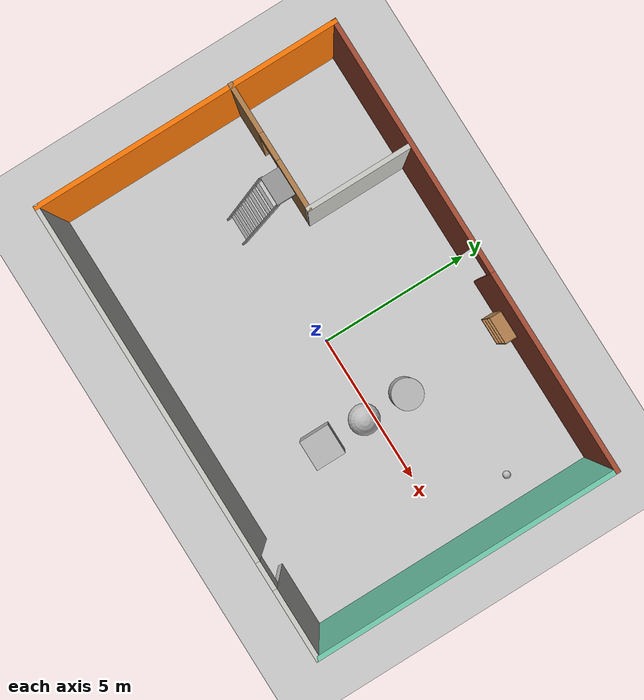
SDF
<sdf version="1.6">
 <world name="default">
  <light name="sun" type="directional">
   <pose>0 0 10 0 -0 0</pose>
   <diffuse>0.8 0.8 0.8 1</diffuse>
   <specular>0.2 0.2 0.2 1</specular>
   <attenuation>
    <range>1000</range>
    <constant>0.9</constant>
    <linear>0.01</linear>
    <quadratic>0.001</quadratic>
   </attenuation>
   <direction>-0.5 0.1 -0.9</direction>
  </light>
  <model name="ground_plane">
   <static>1</static>
   <link name="link">
    <collision name="collision">
     <geometry><plane><normal>0 0 1</normal><size>100 100</size></plane></geometry>
     <surface>
      <contact><collide_bitmask>65535</collide_bitmask></contact>
      <friction><ode><mu>100</mu><mu2>50</mu2></ode></friction>
     </surface>
    </collision>
    <visual name="visual">
     <cast_shadows>0</cast_shadows>
     <geometry><plane><normal>0 0 1</normal><size>100 100</size></plane></geometry>
     <material>
      <script><uri>file://media/materials/scripts/gazebo.material</uri><name>Gazebo/Grey</name></script>
     </material>
    </visual>
   </link>
  </model>
  <gravity>0 0 -9.8</gravity>
  <magnetic_field>6e-06 2.3e-05 -4.2e-05</magnetic_field>
  <atmosphere type="adiabatic"/>
  <physics name="default_physics" default="0" type="ode">
   <max_step_size>0.001</max_step_size>
   <real_time_factor>1</real_time_factor>
   <real_time_update_rate>1000</real_time_update_rate>
  </physics>
  <scene><ambient>0.4 0.4 0.4 1</ambient><background>0.7 0.7 0.7 1</background><shadows>1</shadows></scene>
  <audio><device>default</device></audio>
  <spherical_coordinates>
   <surface_model>EARTH_WGS84</surface_model>
   <latitude_deg>0</latitude_deg>
   <longitude_deg>0</longitude_deg>
   <elevation>0</elevation>
   <heading_deg>0</heading_deg>
  </spherical_coordinates>
  <model name="betterworld">
   <pose>-0.053249 0.021834 0 0 -0 0</pose>
   <link name="Wall_36">
    <pose>0.011179 -4.925 0 0 -0 0</pose>
    <visual name="Wall_36_Visual_0">
     <pose>-1.61732 0 1.25 0 -0 0</pose>
     <geometry><box><size>11.7654 0.15 2.5</size></box></geometry>
     <material>
      <script><uri>file://media/materials/scripts/gazebo.material</uri><name>Gazebo/CeilingTiled</name></script>
      <ambient>1 1 1 1</ambient>
     </material>
     <meta><layer>0</layer></meta>
    </visual>
    <collision name="Wall_36_Collision_0">
     <geometry><box><size>11.7654 0.15 2.5</size></box></geometry>
     <pose>-1.61732 0 1.25 0 -0 0</pose>
    </collision>
    <visual name="Wall_36_Visual_1">
     <pose>6.33268 0 1.25 0 -0 0</pose>
     <geometry><box><size>2.33464 0.15 2.5</size></box></geometry>
     <material>
      <script><uri>file://media/materials/scripts/gazebo.material</uri><name>Gazebo/CeilingTiled</name></script>
      <ambient>1 1 1 1</ambient>
     </material>
     <meta><layer>0</layer></meta>
    </visual>
    <collision name="Wall_36_Collision_1">
     <geometry><box><size>2.33464 0.15 2.5</size></box></geometry>
     <pose>6.33268 0 1.25 0 -0 0</pose>
    </collision>
    <visual name="Wall_36_Visual_2">
     <pose>4.71536 0 2.25 0 -0 0</pose>
     <geometry><box><size>0.9 0.15 0.5</size></box></geometry>
     <material>
      <script><uri>file://media/materials/scripts/gazebo.material</uri><name>Gazebo/CeilingTiled</name></script>
      <ambient>1 1 1 1</ambient>
     </material>
     <meta><layer>0</layer></meta>
    </visual>
    <collision name="Wall_36_Collision_2">
     <geometry><box><size>0.9 0.15 0.5</size></box></geometry>
     <pose>4.71536 0 2.25 0 -0 0</pose>
    </collision>
   </link>
   <link name="Wall_37">
    <collision name="Wall_37_Collision">
     <geometry><box><size>10 0.15 2.5</size></box></geometry>
     <pose>0 0 1.25 0 -0 0</pose>
    </collision>
    <visual name="Wall_37_Visual">
     <pose>0 0 1.25 0 -0 0</pose>
     <geometry><box><size>10 0.15 2.5</size></box></geometry>
     <material>
      <script><uri>file://media/materials/scripts/gazebo.material</uri><name>Gazebo/Grey</name></script>
      <ambient>0.435294 0.796078 0.67451 1</ambient>
     </material>
     <meta><layer>0</layer></meta>
    </visual>
    <pose>7.43618 -0 0 0 -0 1.5708</pose>
   </link>
   <link name="Wall_38">
    <pose>0.011179 4.925 0 0 -0 3.14159</pose>
    <visual name="Wall_38_Visual_0">
     <pose>-4.1975 0 1.25 0 -0 0</pose>
     <geometry><box><size>6.60501 0.15 2.5</size></box></geometry>
     <material>
      <script><uri>file://media/materials/scripts/gazebo.material</uri><name>Gazebo/Bricks</name></script>
      <ambient>1 1 1 1</ambient>
     </material>
     <meta><layer>0</layer></meta>
    </visual>
    <collision name="Wall_38_Collision_0">
     <geometry><box><size>6.60501 0.15 2.5</size></box></geometry>
     <pose>-4.1975 0 1.25 0 -0 0</pose>
    </collision>
    <visual name="Wall_38_Visual_1">
     <pose>3.7525 0 1.25 0 -0 0</pose>
     <geometry><box><size>7.495 0.15 2.5</size></box></geometry>
     <material>
      <script><uri>file://media/materials/scripts/gazebo.material</uri><name>Gazebo/Bricks</name></script>
      <ambient>1 1 1 1</ambient>
     </material>
     <meta><layer>0</layer></meta>
    </visual>
    <collision name="Wall_38_Collision_1">
     <geometry><box><size>7.495 0.15 2.5</size></box></geometry>
     <pose>3.7525 0 1.25 0 -0 0</pose>
    </collision>
    <visual name="Wall_38_Visual_2">
     <pose>-0.444995 0 2.25 0 -0 0</pose>
     <geometry><box><size>0.9 0.15 0.5</size></box></geometry>
     <material>
      <script><uri>file://media/materials/scripts/gazebo.material</uri><name>Gazebo/Bricks</name></script>
      <ambient>1 1 1 1</ambient>
     </material>
     <meta><layer>0</layer></meta>
    </visual>
    <collision name="Wall_38_Collision_2">
     <geometry><box><size>0.9 0.15 0.5</size></box></geometry>
     <pose>-0.444995 0 2.25 0 -0 0</pose>
    </collision>
   </link>
   <link name="Wall_39">
    <collision name="Wall_39_Collision">
     <geometry><box><size>10 0.15 2.5</size></box></geometry>
     <pose>0 0 1.25 0 -0 0</pose>
    </collision>
    <visual name="Wall_39_Visual">
     <pose>0 0 1.25 0 -0 0</pose>
     <geometry><box><size>10 0.15 2.5</size></box></geometry>
     <material>
      <script><uri>file://media/materials/scripts/gazebo.material</uri><name>Gazebo/Grey</name></script>
      <ambient>0.996078 0.47451 0.0196078 1</ambient>
     </material>
     <meta><layer>0</layer></meta>
    </visual>
    <pose>-7.41382 -0 0 0 -0 -1.5708</pose>
   </link>
   <link name="Wall_45">
    <pose>-5.38618 1.51409 0 0 -0 0</pose>
    <visual name="Wall_45_Visual_0">
     <pose>-1.29521 0 1.25 0 -0 0</pose>
     <geometry><box><size>1.65957 0.15 2.5</size></box></geometry>
     <material>
      <script><uri>file://media/materials/scripts/gazebo.material</uri><name>Gazebo/Wood</name></script>
      <ambient>1 1 1 1</ambient>
     </material>
     <meta><layer>0</layer></meta>
    </visual>
    <collision name="Wall_45_Collision_0">
     <geometry><box><size>1.65957 0.15 2.5</size></box></geometry>
     <pose>-1.29521 0 1.25 0 -0 0</pose>
    </collision>
    <visual name="Wall_45_Visual_1">
     <pose>1.27979 0 1.25 0 -0 0</pose>
     <geometry><box><size>1.69043 0.15 2.5</size></box></geometry>
     <material>
      <script><uri>file://media/materials/scripts/gazebo.material</uri><name>Gazebo/Wood</name></script>
      <ambient>1 1 1 1</ambient>
     </material>
     <meta><layer>0</layer></meta>
    </visual>
    <collision name="Wall_45_Collision_1">
     <geometry><box><size>1.69043 0.15 2.5</size></box></geometry>
     <pose>1.27979 0 1.25 0 -0 0</pose>
    </collision>
    <visual name="Wall_45_Visual_2">
     <pose>-0.015428 0 2.25 0 -0 0</pose>
     <geometry><box><size>0.9 0.15 0.5</size></box></geometry>
     <material>
      <script><uri>file://media/materials/scripts/gazebo.material</uri><name>Gazebo/Wood</name></script>
      <ambient>1 1 1 1</ambient>
     </material>
     <meta><layer>0</layer></meta>
    </visual>
    <collision name="Wall_45_Collision_2">
     <geometry><box><size>0.9 0.15 0.5</size></box></geometry>
     <pose>-0.015428 0 2.25 0 -0 0</pose>
    </collision>
   </link>
   <link name="Wall_46">
    <collision name="Wall_46_Collision">
     <geometry><box><size>3.5 0.15 2.5</size></box></geometry>
     <pose>0 0 1.25 0 -0 0</pose>
    </collision>
    <visual name="Wall_46_Visual">
     <pose>0 0 1.25 0 -0 0</pose>
     <geometry><box><size>3.5 0.15 2.5</size></box></geometry>
     <material>
      <script><uri>file://media/materials/scripts/gazebo.material</uri><name>Gazebo/CeilingTiled</name></script>
      <ambient>1 1 1 1</ambient>
     </material>
     <meta><layer>0</layer></meta>
    </visual>
    <pose>-3.33618 3.18909 0 0 -0 1.5708</pose>
   </link>
   <static>1</static>
  </model>
  <model name="bookshelf">
   <static>1</static>
   <link name="link">
    <inertial><mass>1</mass></inertial>
    <collision name="back">
     <pose>0 0.005 0.6 0 -0 0</pose>
     <geometry><box><size>0.9 0.01 1.2</size></box></geometry>
    </collision>
    <visual name="visual1">
     <pose>0 0.005 0.6 0 -0 0</pose>
     <geometry><box><size>0.9 0.01 1.2</size></box></geometry>
     <material>
      <script><uri>file://media/materials/scripts/gazebo.material</uri><name>Gazebo/Wood</name></script>
     </material>
    </visual>
    <collision name="left_side">
     <pose>0.45 -0.195 0.6 0 -0 0</pose>
     <geometry><box><size>0.02 0.4 1.2</size></box></geometry>
    </collision>
    <visual name="visual2">
     <pose>0.45 -0.195 0.6 0 -0 0</pose>
     <geometry><box><size>0.02 0.4 1.2</size></box></geometry>
     <material>
      <script><uri>file://media/materials/scripts/gazebo.material</uri><name>Gazebo/Wood</name></script>
     </material>
    </visual>
    <collision name="right_side">
     <pose>-0.45 -0.195 0.6 0 -0 0</pose>
     <geometry><box><size>0.02 0.4 1.2</size></box></geometry>
    </collision>
    <visual name="visual3">
     <pose>-0.45 -0.195 0.6 0 -0 0</pose>
     <geometry><box><size>0.02 0.4 1.2</size></box></geometry>
     <material>
      <script><uri>file://media/materials/scripts/gazebo.material</uri><name>Gazebo/Wood</name></script>
     </material>
    </visual>
    <collision name="bottom">
     <pose>0 -0.195 0.03 0 -0 0</pose>
     <geometry><box><size>0.88 0.4 0.06</size></box></geometry>
    </collision>
    <visual name="visual4">
     <pose>0 -0.195 0.03 0 -0 0</pose>
     <geometry><box><size>0.88 0.4 0.06</size></box></geometry>
     <material>
      <script><uri>file://media/materials/scripts/gazebo.material</uri><name>Gazebo/Wood</name></script>
     </material>
    </visual>
    <collision name="top">
     <pose>0 -0.195 1.19 0 -0 0</pose>
     <geometry><box><size>0.88 0.4 0.02</size></box></geometry>
    </collision>
    <visual name="visual5">
     <pose>0 -0.195 1.19 0 -0 0</pose>
     <geometry><box><size>0.88 0.4 0.02</size></box></geometry>
     <material>
      <script><uri>file://media/materials/scripts/gazebo.material</uri><name>Gazebo/Wood</name></script>
     </material>
    </visual>
    <collision name="low_shelf">
     <pose>0 -0.195 0.43 0 -0 0</pose>
     <geometry><box><size>0.88 0.4 0.02</size></box></geometry>
    </collision>
    <visual name="visual6">
     <pose>0 -0.195 0.43 0 -0 0</pose>
     <geometry><box><size>0.88 0.4 0.02</size></box></geometry>
     <material>
      <script><uri>file://media/materials/scripts/gazebo.material</uri><name>Gazebo/Wood</name></script>
     </material>
    </visual>
    <collision name="high_shelf">
     <pose>0 -0.195 0.8 0 -0 0</pose>
     <geometry><box><size>0.88 0.4 0.02</size></box></geometry>
    </collision>
    <visual name="visual7">
     <pose>0 -0.195 0.8 0 -0 0</pose>
     <geometry><box><size>0.88 0.4 0.02</size></box></geometry>
     <material>
      <script><uri>file://media/materials/scripts/gazebo.material</uri><name>Gazebo/Wood</name></script>
     </material>
    </visual>
   </link>
   <pose>2.44465 4.84032 0 0 -0 0</pose>
  </model>
  <model name="frc2016_ball">
   <pose>6.45942 2.53368 0.127 0 -0 0</pose>
   <link name="link">
    <inertial>
     <mass>0.213</mass>
     <inertia>
      <ixx>0.00322667</ixx>
      <ixy>0</ixy>
      <ixz>0</ixz>
      <iyy>0.00322667</iyy>
      <iyz>0</iyz>
      <izz>0.00322667</izz>
     </inertia>
    </inertial>
    <visual name="visual"><geometry><sphere><radius>0.127</radius></sphere></geometry></visual>
    <collision name="collision">
     <geometry><sphere><radius>0.127</radius></sphere></geometry>
     <surface>
      <bounce><restitution_coefficient>0.15937</restitution_coefficient><threshold>0</threshold></bounce>
      <contact><ode><max_vel>100</max_vel><min_depth>0.001</min_depth></ode></contact>
     </surface>
    </collision>
   </link>
  </model>
  <model name="ladder_60deg_0rails">
   <static>1</static>
   <link name="step0">
    <pose>0 0.15396 0.266667 0 -0 0</pose>
    <inertial>
     <mass>9.75482</mass>
     <inertia>
      <ixx>0.00957124</ixx>
      <iyy>0.65963</iyy>
      <izz>0.666842</izz>
      <ixy>0</ixy>
      <ixz>0</ixz>
      <iyz>0</iyz>
     </inertia>
    </inertial>
    <collision name="collision"><geometry><box><size>0.9 0.1016 0.0381</size></box></geometry></collision>
    <visual name="visual">
     <geometry><box><size>0.9 0.1016 0.0381</size></box></geometry>
     <material>
      <script><uri>file://media/materials/scripts/gazebo.material</uri><name>Gazebo/Grey</name></script>
     </material>
    </visual>
   </link>
   <link name="step1">
    <pose>0 0.30792 0.533333 0 -0 0</pose>
    <inertial>
     <mass>9.75482</mass>
     <inertia>
      <ixx>0.00957124</ixx>
      <iyy>0.65963</iyy>
      <izz>0.666842</izz>
      <ixy>0</ixy>
      <ixz>0</ixz>
      <iyz>0</iyz>
     </inertia>
    </inertial>
    <collision name="collision"><geometry><box><size>0.9 0.1016 0.0381</size></box></geometry></collision>
    <visual name="visual">
     <geometry><box><size>0.9 0.1016 0.0381</size></box></geometry>
     <material>
      <script><uri>file://media/materials/scripts/gazebo.material</uri><name>Gazebo/Grey</name></script>
     </material>
    </visual>
   </link>
   <link name="step2">
    <pose>0 0.46188 0.8 0 -0 0</pose>
    <inertial>
     <mass>9.75482</mass>
     <inertia>
      <ixx>0.00957124</ixx>
      <iyy>0.65963</iyy>
      <izz>0.666842</izz>
      <ixy>0</ixy>
      <ixz>0</ixz>
      <iyz>0</iyz>
     </inertia>
    </inertial>
    <collision name="collision"><geometry><box><size>0.9 0.1016 0.0381</size></box></geometry></collision>
    <visual name="visual">
     <geometry><box><size>0.9 0.1016 0.0381</size></box></geometry>
     <material>
      <script><uri>file://media/materials/scripts/gazebo.material</uri><name>Gazebo/Grey</name></script>
     </material>
    </visual>
   </link>
   <link name="step3">
    <pose>0 0.61584 1.06667 0 -0 0</pose>
    <inertial>
     <mass>9.75482</mass>
     <inertia>
      <ixx>0.00957124</ixx>
      <iyy>0.65963</iyy>
      <izz>0.666842</izz>
      <ixy>0</ixy>
      <ixz>0</ixz>
      <iyz>0</iyz>
     </inertia>
    </inertial>
    <collision name="collision"><geometry><box><size>0.9 0.1016 0.0381</size></box></geometry></collision>
    <visual name="visual">
     <geometry><box><size>0.9 0.1016 0.0381</size></box></geometry>
     <material>
      <script><uri>file://media/materials/scripts/gazebo.material</uri><name>Gazebo/Grey</name></script>
     </material>
    </visual>
   </link>
   <link name="step4">
    <pose>0 0.7698 1.33333 0 -0 0</pose>
    <inertial>
     <mass>9.75482</mass>
     <inertia>
      <ixx>0.00957124</ixx>
      <iyy>0.65963</iyy>
      <izz>0.666842</izz>
      <ixy>0</ixy>
      <ixz>0</ixz>
      <iyz>0</iyz>
     </inertia>
    </inertial>
    <collision name="collision"><geometry><box><size>0.9 0.1016 0.0381</size></box></geometry></collision>
    <visual name="visual">
     <geometry><box><size>0.9 0.1016 0.0381</size></box></geometry>
     <material>
      <script><uri>file://media/materials/scripts/gazebo.material</uri><name>Gazebo/Grey</name></script>
     </material>
    </visual>
   </link>
   <link name="step5">
    <pose>0 0.92376 1.6 0 -0 0</pose>
    <inertial>
     <mass>9.75482</mass>
     <inertia>
      <ixx>0.00957124</ixx>
      <iyy>0.65963</iyy>
      <izz>0.666842</izz>
      <ixy>0</ixy>
      <ixz>0</ixz>
      <iyz>0</iyz>
     </inertia>
    </inertial>
    <collision name="collision"><geometry><box><size>0.9 0.1016 0.0381</size></box></geometry></collision>
    <visual name="visual">
     <geometry><box><size>0.9 0.1016 0.0381</size></box></geometry>
     <material>
      <script><uri>file://media/materials/scripts/gazebo.material</uri><name>Gazebo/Grey</name></script>
     </material>
    </visual>
   </link>
   <link name="step6">
    <pose>0 1.07772 1.86667 0 -0 0</pose>
    <inertial>
     <mass>9.75482</mass>
     <inertia>
      <ixx>0.00957124</ixx>
      <iyy>0.65963</iyy>
      <izz>0.666842</izz>
      <ixy>0</ixy>
      <ixz>0</ixz>
      <iyz>0</iyz>
     </inertia>
    </inertial>
    <collision name="collision"><geometry><box><size>0.9 0.1016 0.0381</size></box></geometry></collision>
    <visual name="visual">
     <geometry><box><size>0.9 0.1016 0.0381</size></box></geometry>
     <material>
      <script><uri>file://media/materials/scripts/gazebo.material</uri><name>Gazebo/Grey</name></script>
     </material>
    </visual>
   </link>
   <link name="step7">
    <pose>0 1.23168 2.13333 0 -0 0</pose>
    <inertial>
     <mass>9.75482</mass>
     <inertia>
      <ixx>0.00957124</ixx>
      <iyy>0.65963</iyy>
      <izz>0.666842</izz>
      <ixy>0</ixy>
      <ixz>0</ixz>
      <iyz>0</iyz>
     </inertia>
    </inertial>
    <collision name="collision"><geometry><box><size>0.9 0.1016 0.0381</size></box></geometry></collision>
    <visual name="visual">
     <geometry><box><size>0.9 0.1016 0.0381</size></box></geometry>
     <material>
      <script><uri>file://media/materials/scripts/gazebo.material</uri><name>Gazebo/Grey</name></script>
     </material>
    </visual>
   </link>
   <link name="landing">
    <pose>0 1.68564 2.4 0 -0 0</pose>
    <inertial>
     <mass>57.6072</mass>
     <inertia><ixx>1.73518</ixx><iyy>3.89545</iyy><izz>5.6167</izz><ixy>0</ixy><ixz>0</ixz><iyz>0</iyz></inertia>
    </inertial>
    <collision name="collision"><geometry><box><size>0.9 0.6 0.1016</size></box></geometry></collision>
    <visual name="visual">
     <geometry><box><size>0.9 0.6 0.1016</size></box></geometry>
     <material>
      <script><uri>file://media/materials/scripts/gazebo.material</uri><name>Gazebo/Grey</name></script>
     </material>
    </visual>
   </link>
   <link name="left_side_wall">
    <pose>-0.45 0.69282 1.2 1.0472 -0 0</pose>
    <collision name="collision"><geometry><box><size>0.0508 2.85128 0.13</size></box></geometry></collision>
    <visual name="visual">
     <geometry><box><size>0.0508 2.85128 0.13</size></box></geometry>
     <material>
      <script><uri>file://media/materials/scripts/gazebo.material</uri><name>Gazebo/Grey</name></script>
     </material>
    </visual>
   </link>
   <link name="right_side_wall">
    <pose>0.45 0.69282 1.2 1.0472 -0 0</pose>
    <collision name="collision"><geometry><box><size>0.0508 2.85128 0.13</size></box></geometry></collision>
    <visual name="visual">
     <geometry><box><size>0.0508 2.85128 0.13</size></box></geometry>
     <material>
      <script><uri>file://media/materials/scripts/gazebo.material</uri><name>Gazebo/Grey</name></script>
     </material>
    </visual>
   </link>
   <pose>-4.39 -0.538724 0 0 -0 0</pose>
  </model>
  <model name="textured_shapes">
   <pose>2.6348 -0.28923 0.5 0 -0 0</pose>
   <link name="box">
    <pose>0 -1.5 0 0 -0 0</pose>
    <collision name="collision"><geometry><box><size>1 1 1</size></box></geometry></collision>
    <visual name="visual">
     <geometry><box><size>1 1 1</size></box></geometry>
     <material>
      <script>
       <uri>model://textured_shapes/materials/scripts</uri>
       <uri>model://textured_shapes/materials/textures</uri>
       <name>TexturedShape/Squares</name>
      </script>
     </material>
    </visual>
    <inertial>
     <inertia><ixx>1</ixx><ixy>0</ixy><ixz>0</ixz><iyy>1</iyy><iyz>0</iyz><izz>1</izz></inertia>
     <mass>1</mass>
    </inertial>
   </link>
   <link name="sphere">
    <collision name="collision"><geometry><sphere><radius>0.5</radius></sphere></geometry></collision>
    <visual name="visual">
     <geometry><sphere><radius>0.5</radius></sphere></geometry>
     <material>
      <script>
       <uri>model://textured_shapes/materials/scripts</uri>
       <uri>model://textured_shapes/materials/textures</uri>
       <name>TexturedShape/Squares</name>
      </script>
     </material>
    </visual>
    <inertial>
     <inertia><ixx>1</ixx><ixy>0</ixy><ixz>0</ixz><iyy>1</iyy><iyz>0</iyz><izz>1</izz></inertia>
     <mass>1</mass>
    </inertial>
   </link>
   <link name="cylinder">
    <pose>0 1.5 0 0 -0 0</pose>
    <collision name="collision">
     <geometry><cylinder><radius>0.5</radius><length>1</length></cylinder></geometry>
    </collision>
    <visual name="visual">
     <geometry><cylinder><radius>0.5</radius><length>1</length></cylinder></geometry>
     <material>
      <script>
       <uri>model://textured_shapes/materials/scripts</uri>
       <uri>model://textured_shapes/materials/textures</uri>
       <name>TexturedShape/Squares</name>
      </script>
     </material>
    </visual>
    <inertial>
     <inertia><ixx>1</ixx><ixy>0</ixy><ixz>0</ixz><iyy>1</iyy><iyz>0</iyz><izz>1</izz></inertia>
     <mass>1</mass>
    </inertial>
   </link>
  </model>
 </world>
</sdf>
